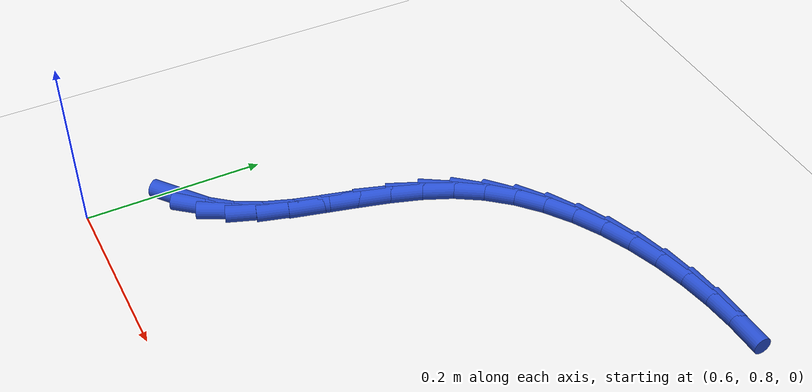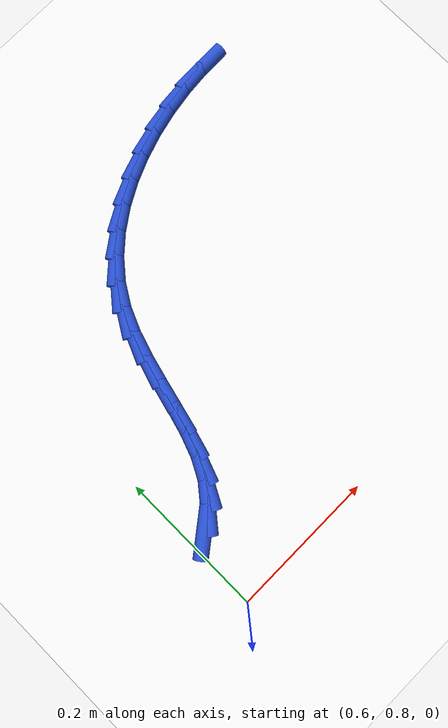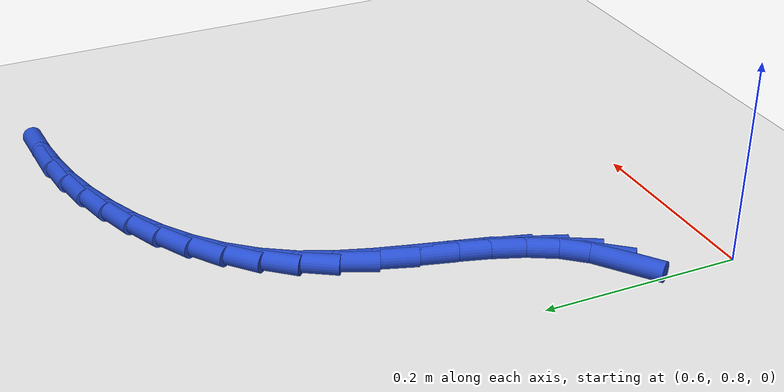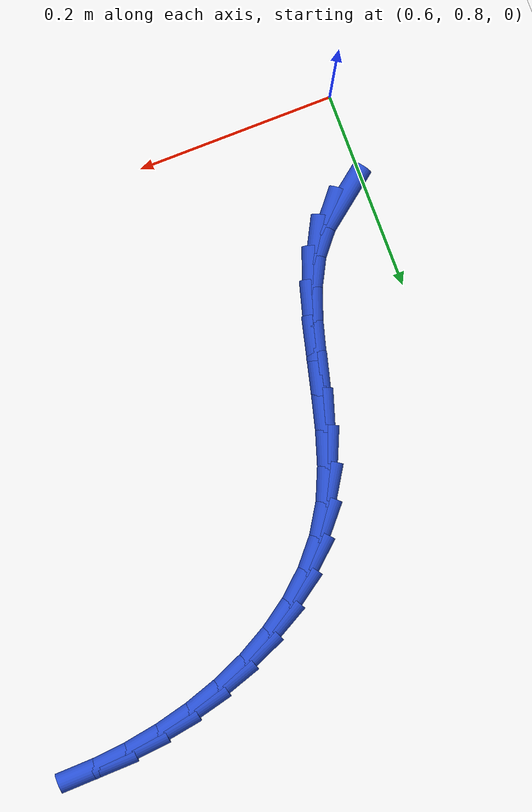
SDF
<sdf version="1.6">
 <world name="default">
  <model name="ground_plane">
   <static>1</static>
   <link name="link">
    <collision name="collision">
     <geometry><plane><normal>0 0 1</normal><size>100 100</size></plane></geometry>
     <surface><friction><ode><mu>100</mu><mu2>50</mu2></ode></friction></surface>
    </collision>
    <visual name="visual">
     <cast_shadows>0</cast_shadows>
     <geometry><plane><normal>0 0 1</normal><size>100 100</size></plane></geometry>
     <material>
      <script><uri>file://media/materials/scripts/gazebo.material</uri><name>Gazebo/WhiteGlow</name></script>
     </material>
    </visual>
   </link>
  </model>
  <model name="line">
   <link name="link_37">
    <pose>0.627622534529604 0.9028941194714943 0.01 0 1.57 0.6571479314906479</pose>
    <collision name="collision">
     <geometry><cylinder><radius>0.01</radius><length>0.08</length></cylinder></geometry>
    </collision>
    <visual name="visual">
     <material>
      <script><name>Gazebo/Blue</name><uri>file://media/materials/scripts/gazebo.material</uri></script>
     </material>
     <geometry><cylinder><radius>0.01</radius><length>0.08</length></cylinder></geometry>
    </visual>
   </link>
   <link name="link_38">
    <pose>0.6511970097185245 0.9210828882541429 0.01 0 1.57 0.8780879587779196</pose>
    <collision name="collision">
     <geometry><cylinder><radius>0.01</radius><length>0.08</length></cylinder></geometry>
    </collision>
    <visual name="visual">
     <material>
      <script><name>Gazebo/Blue</name><uri>file://media/materials/scripts/gazebo.material</uri></script>
     </material>
     <geometry><cylinder><radius>0.01</radius><length>0.08</length></cylinder></geometry>
    </visual>
   </link>
   <link name="link_39">
    <pose>0.670185007129371 0.9439627620193984 0.01 0 1.57 1.0833853122143733</pose>
    <collision name="collision">
     <geometry><cylinder><radius>0.01</radius><length>0.08</length></cylinder></geometry>
    </collision>
    <visual name="visual">
     <material>
      <script><name>Gazebo/Blue</name><uri>file://media/materials/scripts/gazebo.material</uri></script>
     </material>
     <geometry><cylinder><radius>0.01</radius><length>0.08</length></cylinder></geometry>
    </visual>
   </link>
   <link name="link_40">
    <pose>0.6847534799290174 0.9714469635232001 0.01 0 1.57 1.2206443785357857</pose>
    <collision name="collision">
     <geometry><cylinder><radius>0.01</radius><length>0.08</length></cylinder></geometry>
    </collision>
    <visual name="visual">
     <material>
      <script><name>Gazebo/Blue</name><uri>file://media/materials/scripts/gazebo.material</uri></script>
     </material>
     <geometry><cylinder><radius>0.01</radius><length>0.08</length></cylinder></geometry>
    </visual>
   </link>
   <link name="link_41">
    <pose>0.6960945747997966 1.0025013807201573 0.01 0 1.57 1.2980307831445093</pose>
    <collision name="collision">
     <geometry><cylinder><radius>0.01</radius><length>0.08</length></cylinder></geometry>
    </collision>
    <visual name="visual">
     <material>
      <script><name>Gazebo/Blue</name><uri>file://media/materials/scripts/gazebo.material</uri></script>
     </material>
     <geometry><cylinder><radius>0.01</radius><length>0.08</length></cylinder></geometry>
    </visual>
   </link>
   <link name="link_42">
    <pose>0.7054724885665461 1.0360253232980372 0.01 0 1.57 1.327011994624476</pose>
    <collision name="collision">
     <geometry><cylinder><radius>0.01</radius><length>0.08</length></cylinder></geometry>
    </collision>
    <visual name="visual">
     <material>
      <script><name>Gazebo/Blue</name><uri>file://media/materials/scripts/gazebo.material</uri></script>
     </material>
     <geometry><cylinder><radius>0.01</radius><length>0.08</length></cylinder></geometry>
    </visual>
   </link>
   <link name="link_43">
    <pose>0.7141514180541033 1.0709181009446078 0.01 0 1.57 1.3137048929895958</pose>
    <collision name="collision">
     <geometry><cylinder><radius>0.01</radius><length>0.08</length></cylinder></geometry>
    </collision>
    <visual name="visual">
     <material>
      <script><name>Gazebo/Blue</name><uri>file://media/materials/scripts/gazebo.material</uri></script>
     </material>
     <geometry><cylinder><radius>0.01</radius><length>0.08</length></cylinder></geometry>
    </visual>
   </link>
   <link name="link_44">
    <pose>0.7233955600873057 1.1060790233476363 0.01 0 1.57 1.2587573330821908</pose>
    <collision name="collision">
     <geometry><cylinder><radius>0.01</radius><length>0.08</length></cylinder></geometry>
    </collision>
    <visual name="visual">
     <material>
      <script><name>Gazebo/Blue</name><uri>file://media/materials/scripts/gazebo.material</uri></script>
     </material>
     <geometry><cylinder><radius>0.01</radius><length>0.08</length></cylinder></geometry>
    </visual>
   </link>
   <link name="link_45">
    <pose>0.7344691114909911 1.1404074001948907 0.01 0 1.57 1.1585340089251464</pose>
    <collision name="collision">
     <geometry><cylinder><radius>0.01</radius><length>0.08</length></cylinder></geometry>
    </collision>
    <visual name="visual">
     <material>
      <script><name>Gazebo/Blue</name><uri>file://media/materials/scripts/gazebo.material</uri></script>
     </material>
     <geometry><cylinder><radius>0.01</radius><length>0.08</length></cylinder></geometry>
    </visual>
   </link>
   <link name="link_46">
    <pose>0.7486362690899965 1.1728025411741387 0.01 0 1.57 1.0141743789651938</pose>
    <collision name="collision">
     <geometry><cylinder><radius>0.01</radius><length>0.08</length></cylinder></geometry>
    </collision>
    <visual name="visual">
     <material>
      <script><name>Gazebo/Blue</name><uri>file://media/materials/scripts/gazebo.material</uri></script>
     </material>
     <geometry><cylinder><radius>0.01</radius><length>0.08</length></cylinder></geometry>
    </visual>
   </link>
   <link name="link_47">
    <pose>0.7669785465220736 1.202279714184704 0.01 0 1.57 0.8652497493111576</pose>
    <collision name="collision">
     <geometry><cylinder><radius>0.01</radius><length>0.08</length></cylinder></geometry>
    </collision>
    <visual name="visual">
     <material>
      <script><name>Gazebo/Blue</name><uri>file://media/materials/scripts/gazebo.material</uri></script>
     </material>
     <geometry><cylinder><radius>0.01</radius><length>0.08</length></cylinder></geometry>
    </visual>
   </link>
   <link name="link_48">
    <pose>0.7893999314316502 1.2286016221275904 0.01 0 1.57 0.7302988509410004</pose>
    <collision name="collision">
     <geometry><cylinder><radius>0.01</radius><length>0.08</length></cylinder></geometry>
    </collision>
    <visual name="visual">
     <material>
      <script><name>Gazebo/Blue</name><uri>file://media/materials/scripts/gazebo.material</uri></script>
     </material>
     <geometry><cylinder><radius>0.01</radius><length>0.08</length></cylinder></geometry>
    </visual>
   </link>
   <link name="link_49">
    <pose>0.815337349708645 1.251827435502178 0.01 0 1.57 0.6099634138188034</pose>
    <collision name="collision">
     <geometry><cylinder><radius>0.01</radius><length>0.08</length></cylinder></geometry>
    </collision>
    <visual name="visual">
     <material>
      <script><name>Gazebo/Blue</name><uri>file://media/materials/scripts/gazebo.material</uri></script>
     </material>
     <geometry><cylinder><radius>0.01</radius><length>0.08</length></cylinder></geometry>
    </visual>
   </link>
   <link name="link_50">
    <pose>0.844226552078059 1.2720170707441545 0.01 0 1.57 0.503117314271276</pose>
    <collision name="collision">
     <geometry><cylinder><radius>0.01</radius><length>0.08</length></cylinder></geometry>
    </collision>
    <visual name="visual">
     <material>
      <script><name>Gazebo/Blue</name><uri>file://media/materials/scripts/gazebo.material</uri></script>
     </material>
     <geometry><cylinder><radius>0.01</radius><length>0.08</length></cylinder></geometry>
    </visual>
   </link>
   <link name="link_51">
    <pose>0.8755032892648935 1.2892304442892093 0.01 0 1.57 0.40772919543496045</pose>
    <collision name="collision">
     <geometry><cylinder><radius>0.01</radius><length>0.08</length></cylinder></geometry>
    </collision>
    <visual name="visual">
     <material>
      <script><name>Gazebo/Blue</name><uri>file://media/materials/scripts/gazebo.material</uri></script>
     </material>
     <geometry><cylinder><radius>0.01</radius><length>0.08</length></cylinder></geometry>
    </visual>
   </link>
   <link name="link_52">
    <pose>0.9086033119941495 1.3035274725730297 0.01 0 1.57 0.3214251846444933</pose>
    <collision name="collision">
     <geometry><cylinder><radius>0.01</radius><length>0.08</length></cylinder></geometry>
    </collision>
    <visual name="visual">
     <material>
      <script><name>Gazebo/Blue</name><uri>file://media/materials/scripts/gazebo.material</uri></script>
     </material>
     <geometry><cylinder><radius>0.01</radius><length>0.08</length></cylinder></geometry>
    </visual>
   </link>
   <link name="link_53">
    <pose>0.9429623709908274 1.3149680720313042 0.01 0 1.57 0.24177096613294172</pose>
    <collision name="collision">
     <geometry><cylinder><radius>0.01</radius><length>0.08</length></cylinder></geometry>
    </collision>
    <visual name="visual">
     <material>
      <script><name>Gazebo/Blue</name><uri>file://media/materials/scripts/gazebo.material</uri></script>
     </material>
     <geometry><cylinder><radius>0.01</radius><length>0.08</length></cylinder></geometry>
    </visual>
   </link>
   <link name="link_54">
    <pose>0.9780162169799287 1.3236121590997212 0.01 0 1.57 0.1663503867294449</pose>
    <collision name="collision">
     <geometry><cylinder><radius>0.01</radius><length>0.08</length></cylinder></geometry>
    </collision>
    <visual name="visual">
     <material>
      <script><name>Gazebo/Blue</name><uri>file://media/materials/scripts/gazebo.material</uri></script>
     </material>
     <geometry><cylinder><radius>0.01</radius><length>0.08</length></cylinder></geometry>
    </visual>
   </link>
   <link name="link_55">
    <pose>1.0132007655844522 1.3295197153487555 0.01 0 1.57 0.09392492605285885</pose>
    <collision name="collision">
     <geometry><cylinder><radius>0.01</radius><length>0.08</length></cylinder></geometry>
    </collision>
    <visual name="visual">
     <material>
      <script><name>Gazebo/Blue</name><uri>file://media/materials/scripts/gazebo.material</uri></script>
     </material>
     <geometry><cylinder><radius>0.01</radius><length>0.08</length></cylinder></geometry>
    </visual>
   </link>
   <link name="link_56">
    <pose>1.0480936419303888 1.3328066976695312 0.01 0 1.57 0.027191372931767228</pose>
    <collision name="collision">
     <geometry><cylinder><radius>0.01</radius><length>0.08</length></cylinder></geometry>
    </collision>
    <visual name="visual">
     <material>
      <script><name>Gazebo/Blue</name><uri>file://media/materials/scripts/gazebo.material</uri></script>
     </material>
     <geometry><cylinder><radius>0.01</radius><length>0.08</length></cylinder></geometry>
    </visual>
   </link>
  </model>
 </world>
</sdf>
